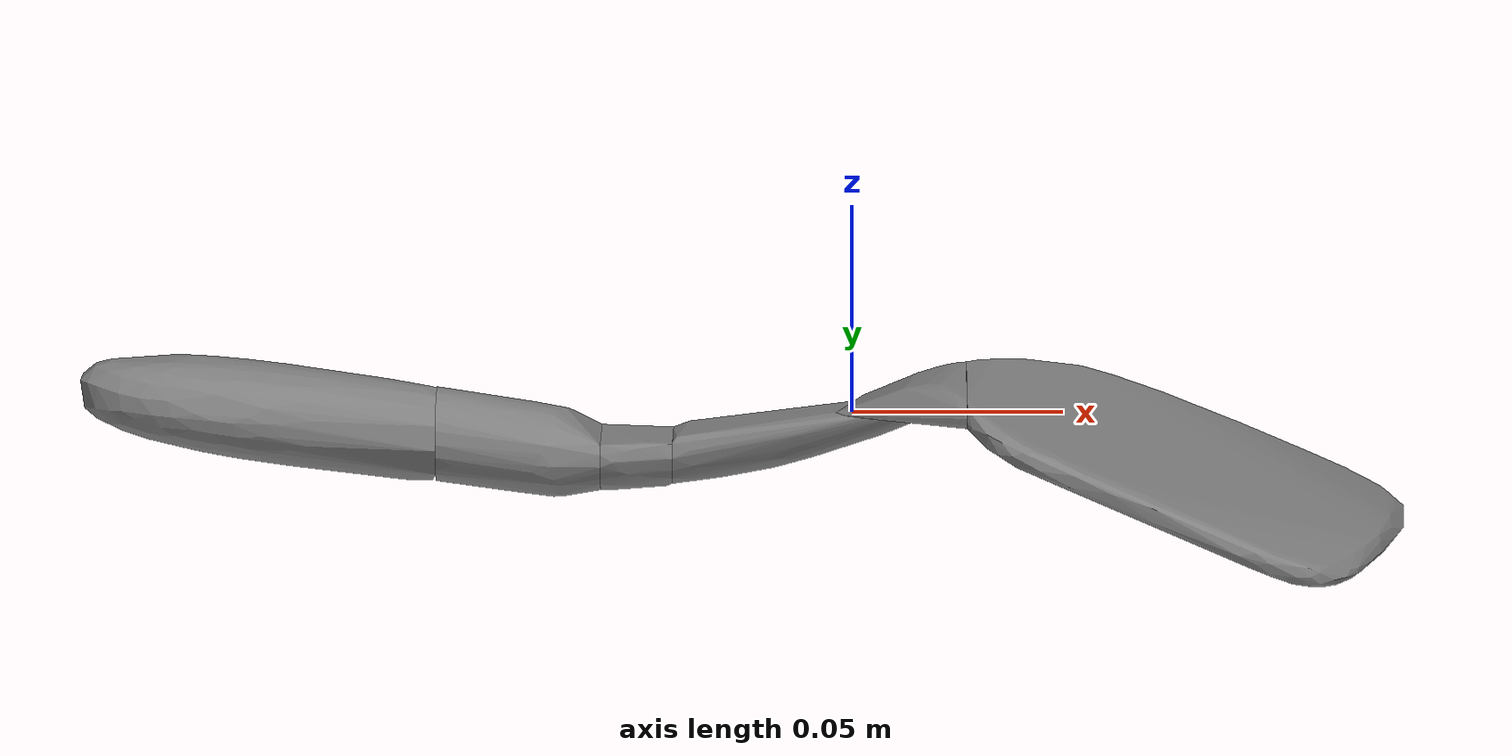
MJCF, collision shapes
<mujoco model="ycb_033_spatula">
  <compiler meshdir="meshes" texturedir="meshes" angle="radian"/>
  <default>
    <default class="visual"><geom contype="0" conaffinity="0" group="2" density="0"/></default>
    <default class="collision"><geom group="3"/></default>
  </default>
  <asset>
    <texture name="ycb_033_spatula_tex" type="2d" file="ycb_033_spatula_texture.png"/>
    <material name="ycb_033_spatula_mat" texture="ycb_033_spatula_tex" specular="0.2" shininess="0.3"/>
    <mesh name="ycb_033_spatula_visual" file="ycb_033_spatula_visual.obj"/>
    <mesh name="ycb_033_spatula_hull0" file="ycb_033_spatula_hull0.obj"/>
    <mesh name="ycb_033_spatula_hull1" file="ycb_033_spatula_hull1.obj"/>
    <mesh name="ycb_033_spatula_hull2" file="ycb_033_spatula_hull2.obj"/>
    <mesh name="ycb_033_spatula_hull3" file="ycb_033_spatula_hull3.obj"/>
    <mesh name="ycb_033_spatula_hull4" file="ycb_033_spatula_hull4.obj"/>
    <mesh name="ycb_033_spatula_hull5" file="ycb_033_spatula_hull5.obj"/>
  </asset>
  <worldbody>
    <body name="object" pos="0 0 0">
      <freejoint name="object_free"/>
      <geom type="mesh" mesh="ycb_033_spatula_visual" material="ycb_033_spatula_mat" class="visual"/>
      <geom type="mesh" mesh="ycb_033_spatula_hull0" class="collision"/>
      <geom type="mesh" mesh="ycb_033_spatula_hull1" class="collision"/>
      <geom type="mesh" mesh="ycb_033_spatula_hull2" class="collision"/>
      <geom type="mesh" mesh="ycb_033_spatula_hull3" class="collision"/>
      <geom type="mesh" mesh="ycb_033_spatula_hull4" class="collision"/>
      <geom type="mesh" mesh="ycb_033_spatula_hull5" class="collision"/>
    </body>
  </worldbody>
</mujoco>
